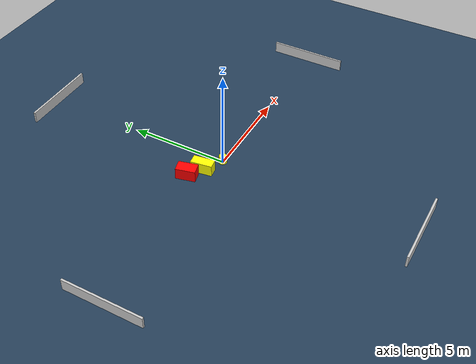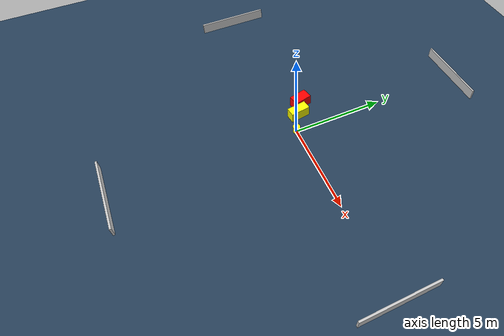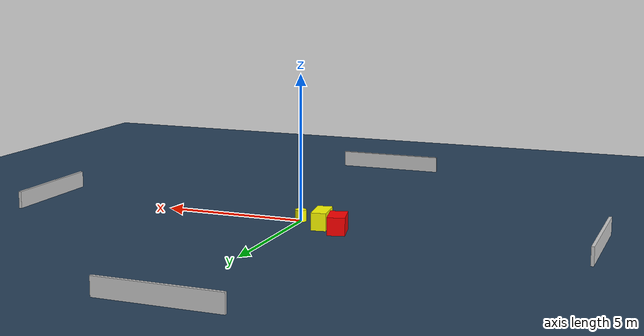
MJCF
<?xml version="1.0" ?>
<mujoco model="generated_environment">
  <option timestep="0.01" integrator="RK4" cone="elliptic"/>
  <default>
    <geom density="1"/>
  </default>
  <asset>
    <texture builtin="gradient" height="3072" name="skybox" rgb1="0.3 0.5 0.7" rgb2="0 0 0" type="skybox" width="512"/>
    <texture builtin="checker" height="300" name="groundplane" rgb1="0.2 0.3 0.4" rgb2="0.1 0.2 0.3" type="2d" width="300"/>
    <material name="groundplane" reflectance="0.2" texrepeat="5 5" texture="groundplane"/>
  </asset>
  <worldbody>
    <light dir="0 0 -1" directional="true" pos="0 0 1.5"/>
    <geom condim="3" friction="0.5 0.005 0.001" material="groundplane" name="floor" pos="0 0 0" size="0 0 0.05" type="plane"/>
    <body name="walls">
      <geom name="wall_1" condim="4" pos="-10.0 0.0 0.3" rgba="0.800000011920929 0.800000011920929 0.800000011920929 1.0" size="0.05 2.0 0.3" type="box"/>
      <geom name="wall_2" condim="4" pos="10.0 0.0 0.3" rgba="0.800000011920929 0.800000011920929 0.800000011920929 1.0" size="0.05 2.0 0.3" type="box"/>
      <geom name="wall_3" condim="4" pos="0.0 -10.0 0.3" rgba="0.800000011920929 0.800000011920929 0.800000011920929 1.0" size="2.0 0.05 0.3" type="box"/>
      <geom name="wall_4" condim="4" pos="0.0 10.0 0.3" rgba="0.800000011920929 0.800000011920929 0.800000011920929 1.0" size="2.0 0.05 0.3" type="box"/>
    </body>
    <body name="robot">
      <joint name="joint_x" type="slide" pos="0 0 0" axis="1 0 0"/>
      <joint name="joint_y" type="slide" pos="0 0 0" axis="0 1 0"/>
      <geom name="robot" type="cylinder" pos="0.0 0.0 0.2" size="0.2 0.2 0.0" mass="5.0" friction="1.0 0.005 0.0001" condim="4" rgba="1.0 1.0 0.0 1.0"/>
    </body>
    <body name="obstacle_1_movable">
      <geom name="obstacle_1_movable" condim="4" pos="-0.9794503041799252 0.5625651599737953 0.3" euler="0 0 7.954059547843246" friction="0.0 0.005 0.001" rgba="1.0 1.0 0.0 1.0" size="0.253839898415828 0.543656393154698 0.3" type="box" mass="0.1"/>
      <joint type="free"/>
    </body>
    <body name="obstacle_2_static">
      <geom name="obstacle_2_static" condim="4" pos="-1.704867512214869 1.019660055959354 0.3" euler="0 0 13.52865542374853" friction="0.0 0.005 0.001" rgba="1.0 0.0 0.0 1.0" size="0.2967313312139148 0.4942486284186811 0.3" type="box"/>
    </body>
  </worldbody>
  <actuator>
    <motor name="actuator_x" joint="joint_x" gear="1" ctrlrange="-1 1"/>
    <motor name="actuator_y" joint="joint_y" gear="1" ctrlrange="-1 1"/>
  </actuator>
</mujoco>
